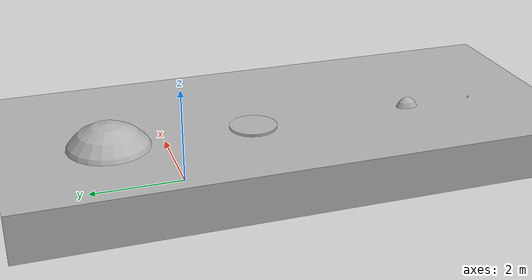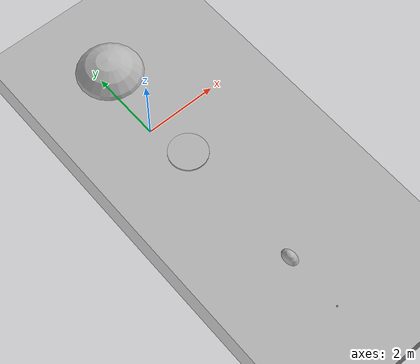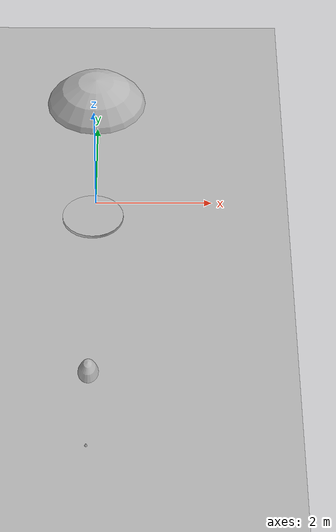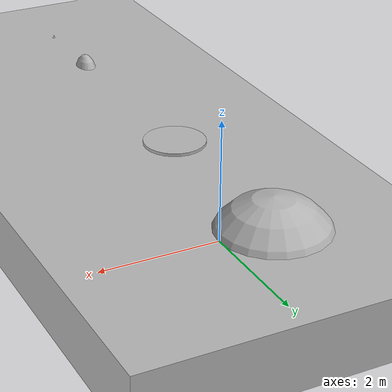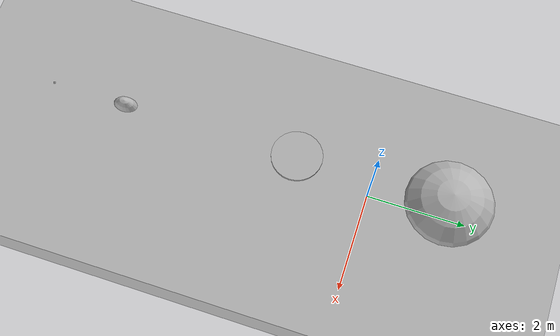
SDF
<?xml version="1.0" ?>
<sdf version="1.6">
  <world name="default">
    <model name="sphere">
      <pose>0 1.5 0.5 0 0 0</pose>
      <link name="sphere_link">
        <inertial>
          <inertia>
            <ixx>3</ixx>
            <ixy>0</ixy>
            <ixz>0</ixz>
            <iyy>3</iyy>
            <iyz>0</iyz>
            <izz>3</izz>
          </inertia>
          <mass>1.0</mass>
        </inertial>
        <collision name="sphere_collision">
          <geometry>
            <sphere>
              <radius>1</radius>
            </sphere>
          </geometry>
        </collision>
        <visual name="sphere_visual">
          <geometry>
            <sphere>
              <radius>1</radius>
            </sphere>
          </geometry>
        </visual>
      </link>
    </model>

    <model name="box">
      <static>true</static>
      <pose>0 0 0.5 0 0 0</pose>
      <link name="box_link">
        <inertial>
          <inertia>
            <ixx>1</ixx>
            <ixy>0</ixy>
            <ixz>0</ixz>
            <iyy>1</iyy>
            <iyz>0</iyz>
            <izz>1</izz>
          </inertia>
          <mass>1.0</mass>
        </inertial>
        <collision name="box_collision">
          <geometry>
            <box>
              <size>100 100 1</size>
            </box>
          </geometry>
        </collision>
        <visual name="box_visual">
          <geometry>
            <box>
              <size>100 100 1</size>
            </box>
          </geometry>
        </visual>
      </link>
    </model>

    <model name="cylinder">
      <pose>0 -1.5 0.5 0 0 0</pose>
      <link name="cylinder_link">
        <inertial>
          <inertia>
            <ixx>2</ixx>
            <ixy>0</ixy>
            <ixz>0</ixz>
            <iyy>2</iyy>
            <iyz>0</iyz>
            <izz>2</izz>
          </inertia>
          <mass>2.0</mass>
        </inertial>
        <collision name="cylinder_collision">
          <geometry>
            <cylinder>
              <radius>0.5</radius>
              <length>1.1</length>
            </cylinder>
          </geometry>
        </collision>
        <visual name="cylinder_visual">
          <geometry>
            <cylinder>
              <radius>0.5</radius>
              <length>1.1</length>
            </cylinder>
          </geometry>
        </visual>
      </link>
    </model>

    <model name="capsule">
      <pose>0 -3.0 0.5 0 0 0</pose>
      <link name="capsule_link">
        <inertial>
          <inertia>
            <ixx>0.074154</ixx>
            <ixy>0</ixy>
            <ixz>0</ixz>
            <iyy>0.074154</iyy>
            <iyz>0</iyz>
            <izz>0.018769</izz>
          </inertia>
          <mass>1.0</mass>
        </inertial>
        <collision name="capsule_collision">
          <geometry>
            <capsule>
              <radius>0.2</radius>
              <length>0.6</length>
            </capsule>
          </geometry>
        </collision>
        <visual name="capsule_visual">
          <geometry>
            <capsule>
              <radius>0.2</radius>
              <length>0.6</length>
            </capsule>
          </geometry>
          <material>
            <ambient>1 1 0 1</ambient>
            <diffuse>1 1 0 1</diffuse>
            <specular>1 1 0 1</specular>
          </material>
        </visual>
      </link>
    </model>

    <model name="ellipsoid">
      <pose>0 -5 0.7 0 0 0</pose>
      <link name="ellipsoid_link">
        <inertial>
          <inertia>
            <ixx>0.068</ixx>
            <ixy>0</ixy>
            <ixz>0</ixz>
            <iyy>0.058</iyy>
            <iyz>0</iyz>
            <izz>0.026</izz>
          </inertia>
          <mass>1.0</mass>
        </inertial>
        <collision name="ellipsoid_collision">
          <geometry>
            <ellipsoid>
              <radii>0.2 0.3 0.5</radii>
            </ellipsoid>
          </geometry>
        </collision>
        <visual name="ellipsoid_visual">
          <geometry>
            <ellipsoid>
              <radii>0.2 0.3 0.5</radii>
            </ellipsoid>
          </geometry>
        </visual>
      </link>
    </model>

    <model name="cone">
      <pose>0 -6.5 0.5 0 0 0</pose>
      <link name="cone_link">
        <inertial>
          <inertia>
            <ixx>2</ixx>
            <ixy>0</ixy>
            <ixz>0</ixz>
            <iyy>2</iyy>
            <iyz>0</iyz>
            <izz>2</izz>
          </inertia>
          <mass>2.0</mass>
          <pose>0 0 -0.275 0 0 0</pose>
        </inertial>
        <collision name="cone_collision">
          <geometry>
            <cone>
              <radius>0.5</radius>
              <length>1.1</length>
            </cone>
          </geometry>
        </collision>
        <visual name="cone_visual">
          <geometry>
            <cone>
              <radius>0.5</radius>
              <length>1.1</length>
            </cone>
          </geometry>
        </visual>
      </link>
    </model>
  </world>
</sdf>
